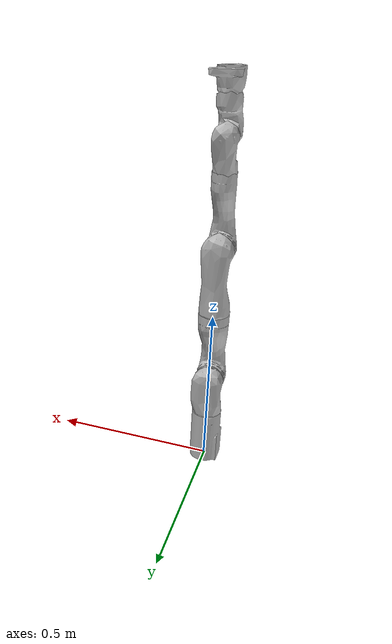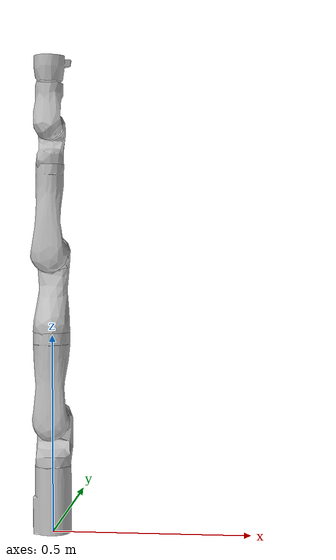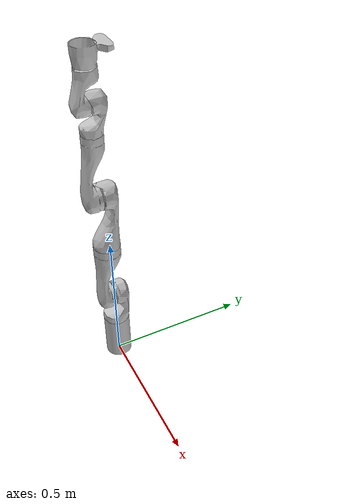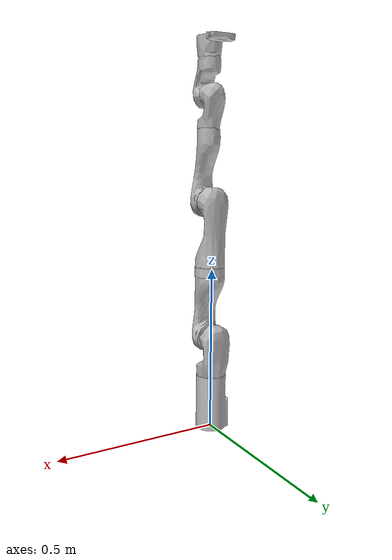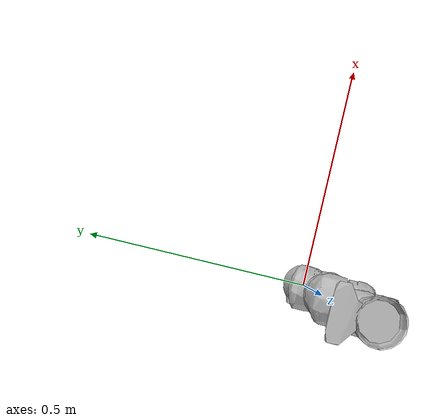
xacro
<?xml version="1.0"?>

<robot name="gen3" xmlns:xacro="http://ros.org/wiki/xacro">

    <!-- Arguments -->
    <xacro:arg name="arm" default="gen3" />
    <xacro:arg name="dof" default="7" />
    <xacro:arg name="vision" default="true" />
    <xacro:arg name="gripper" default="" />
    <xacro:arg name="sim" default="false" />
    <xacro:arg name="prefix" default="" />
    <xacro:arg name="board_id" default="task_board"/>

    <!-- Load the robot -->
    <xacro:include filename="$(find kortex_description)/robots/kortex_robot.xacro" />
    <xacro:load_robot arm="$(arg arm)" gripper="$(arg gripper)" dof="$(arg dof)" vision="$(arg vision)" sim="$(arg sim)" prefix="$(arg prefix)" />

    <!-- Load the task board -->

    <!-- Connect the task board to the world -->

</robot>

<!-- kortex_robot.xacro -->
<robot xmlns:xacro="http://ros.org/wiki/xacro">

    <xacro:macro name="load_robot" params="arm gripper dof vision sim prefix">

        <!-- Files to include -->
        <xacro:include filename="$(find kortex_description)/arms/${arm}/${dof}dof/urdf/${arm}_macro.xacro" />
        <xacro:unless value="${not gripper}">
            <xacro:include filename="$(find kortex_description)/grippers/${gripper}/urdf/${gripper}_macro.xacro" />
        </xacro:unless>

        <xacro:if value="${sim}">
            <!-- Arm transmission elements-->
            <xacro:include filename="$(find kortex_description)/arms/${arm}/${dof}dof/urdf/${arm}_transmission_macro.xacro" />
            <!-- Gripper transmission elements if there is a gripper-->
            <xacro:unless value="${not gripper}">
                <xacro:include filename="$(find kortex_description)/grippers/${gripper}/urdf/${gripper}_transmission_macro.xacro" />
            </xacro:unless>
        </xacro:if>

        <!-- Run the macros -->

        <!-- For gazebo-->
        <xacro:if value="${sim}">
            <link name="world" />
            <joint name="world_to_root" type="fixed">
                <child link="${prefix}base_link" />
                <parent link="world" />
                <origin xyz="0 0 0" rpy="0 0 0" />
            </joint>
        </xacro:if>

        <!-- Load the arm -->
        <xacro:load_arm parent="" dof="${dof}" vision="${vision}" prefix="${prefix}">
            <origin xyz="0 0 0" rpy="0 0 0"/>
        </xacro:load_arm>

        <!-- Load the gripper -->
        <xacro:unless value="${not gripper}">
            <!-- last_arm_link is defined in "$(find kortex_description)/arms/${arm}/urdf/${arm}_macro.xacro" -->
            <xacro:load_gripper parent="${prefix}${last_arm_link}"  prefix="${prefix}"/>
        </xacro:unless>
        <!-- If no gripper, define tool frame here -->
        <xacro:if value="${not gripper}">
            <link name="${prefix}tool_frame"/>
            <joint name="${prefix}tool_frame_joint" type="fixed">
                <origin xyz="0 0 0" rpy="0 0 0" />
                <parent link="${prefix}${last_arm_link}" />
                <child link="${prefix}tool_frame" />
                <axis xyz="0 0 0" />
            </joint>
        </xacro:if>

        <!-- Load the Gazebo transmissions and gazebo_ros_control plugin -->
        <xacro:if value="${sim}">

            <xacro:load_gazebo_arm_transmissions prefix="${prefix}"/>

            <xacro:unless value="${not gripper}">
                <xacro:load_gazebo_gripper_transmissions prefix="${prefix}"/>
            </xacro:unless>

            <gazebo>
                <plugin name="gazebo_ros_control" filename="libgazebo_ros_control.so">
                    <legacyModeNS>true</legacyModeNS>
                </plugin>
            </gazebo>

        </xacro:if>
    </xacro:macro>
</robot>

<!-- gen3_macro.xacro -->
<robot name="gen3_arm" xmlns:xacro="http://ros.org/wiki/xacro">

  <!-- Propagate last link name information because it is the gripper's parent link -->
  <xacro:property name="last_arm_link" value="end_effector_link"/>

  <!-- Include the task_board xacro file -->

  <xacro:macro name="load_arm" params="parent:='' dof vision prefix *origin">
      <link name="${prefix}base_link">
        <inertial>
          <origin xyz="-0.000648 -0.000166 0.084487" rpy="0 0 0" />
          <mass value="1.697" />
          <inertia ixx="0.004622" ixy="9E-06" ixz="6E-05" iyy="0.004495" iyz="9E-06" izz="0.002079" />
        </inertial>
        <visual>
          <origin xyz="0 0 0" rpy="0 0 0" />
          <geometry>
            <mesh filename="package://kortex_description/arms/gen3/${dof}dof/meshes/base_link.STL" />
          </geometry>
          <material name="">
            <color rgba="0.75294 0.75294 0.75294 1" />
          </material>
        </visual>
        <collision>
          <origin xyz="0 0 0" rpy="0 0 0" />
          <geometry>
            <mesh filename="package://kortex_description/arms/gen3/${dof}dof/meshes/base_link.STL" />
          </geometry>
        </collision>
    </link>
    <link name="${prefix}shoulder_link">
      <inertial>
        <origin xyz="-2.3E-05 -0.010364 -0.07336" rpy="0 0 0" />
        <mass value="1.3773" />
        <inertia ixx="0.00457" ixy="1E-06" ixz="2E-06" iyy="0.004831" iyz="0.000448" izz="0.001409" />
      </inertial>
      <visual>
        <origin xyz="0 0 0" rpy="0 0 0" />
        <geometry>
          <mesh filename="package://kortex_description/arms/gen3/${dof}dof/meshes/shoulder_link.STL" />
        </geometry>
        <material name="">
          <color rgba="0.75294 0.75294 0.75294 1" />
        </material>
      </visual>
      <collision>
        <origin xyz="0 0 0" rpy="0 0 0" />
        <geometry>
          <mesh filename="package://kortex_description/arms/gen3/${dof}dof/meshes/shoulder_link.STL" />
        </geometry>
      </collision>
    </link>
    <joint
      name="${prefix}joint_1"
      type="continuous">
      <origin xyz="0 0 0.15643" rpy="3.1416 2.7629E-18 -4.9305E-36" />
      <parent
        link="${prefix}base_link" />
      <child
        link="${prefix}shoulder_link" />
      <axis
        xyz="0 0 1" />
      <limit
        effort="39"
        velocity="1.3963" />
    </joint>
    <link name="${prefix}half_arm_1_link">
      <inertial>
        <origin xyz="-4.4E-05 -0.09958 -0.013278" rpy="0 0 0" />
        <mass value="1.1636" />
        <inertia ixx="0.011088" ixy="5E-06" ixz="0" iyy="0.001072" iyz="-0.000691" izz="0.011255" />
      </inertial>
      <visual>
        <origin xyz="0 0 0" rpy="0 0 0" />
        <geometry>
          <mesh filename="package://kortex_description/arms/gen3/${dof}dof/meshes/half_arm_1_link.STL" />
        </geometry>
        <material name="">
          <color rgba="0.75294 0.75294 0.75294 1" />
        </material>
      </visual>
      <collision>
        <origin xyz="0 0 0" rpy="0 0 0" />
        <geometry>
          <mesh filename="package://kortex_description/arms/gen3/${dof}dof/meshes/half_arm_1_link.STL" />
        </geometry>
      </collision>
    </link>
    <joint
      name="${prefix}joint_2"
      type="revolute">
      <origin xyz="0 0.005375 -0.12838" rpy="1.5708 2.1343E-17 -1.1102E-16" />
      <parent
        link="${prefix}shoulder_link" />
      <child
        link="${prefix}half_arm_1_link" />
      <axis
        xyz="0 0 1" />
      <limit lower="-2.24" upper="2.24" effort="39" velocity="1.3963" />
    </joint>
    <link name="${prefix}half_arm_2_link">
      <inertial>
        <origin xyz="-4.4E-05 -0.006641 -0.117892" rpy="0 0 0" />
        <mass value="1.1636" />
        <inertia ixx="0.010932" ixy="0" ixz="-7E-06" iyy="0.011127" iyz="0.000606" izz="0.001043" />
      </inertial>
      <visual>
        <origin xyz="0 0 0" rpy="0 0 0" />
        <geometry>
          <mesh filename="package://kortex_description/arms/gen3/${dof}dof/meshes/half_arm_2_link.STL" />
        </geometry>
        <material name="">
          <color rgba="0.75294 0.75294 0.75294 1" />
        </material>
      </visual>
      <collision>
        <origin xyz="0 0 0" rpy="0 0 0" />
        <geometry>
          <mesh filename="package://kortex_description/arms/gen3/${dof}dof/meshes/half_arm_2_link.STL" />
        </geometry>
      </collision>
    </link>
    <joint
      name="${prefix}joint_3"
      type="continuous">
      <origin xyz="0 -0.21038 -0.006375" rpy="-1.5708 1.2326E-32 -2.9122E-16" />
      <parent
        link="${prefix}half_arm_1_link" />
      <child
        link="${prefix}half_arm_2_link" />
      <axis
        xyz="0 0 1" />
      <limit
        effort="39"
        velocity="1.3963" />
    </joint>
    <link name="${prefix}forearm_link">
      <inertial>
        <origin xyz="-1.8E-05 -0.075478 -0.015006" rpy="0 0 0" />
        <mass value="0.9302" />
        <inertia ixx="0.008147" ixy="-1E-06" ixz="0" iyy="0.000631" iyz="-0.0005" izz="0.008316" />
      </inertial>
      <visual>
        <origin xyz="0 0 0" rpy="0 0 0" />
        <geometry>
          <mesh filename="package://kortex_description/arms/gen3/${dof}dof/meshes/forearm_link.STL" />
        </geometry>
        <material name="">
          <color rgba="0.75294 0.75294 0.75294 1" />
        </material>
      </visual>
      <collision>
        <origin xyz="0 0 0" rpy="0 0 0" />
        <geometry>
          <mesh filename="package://kortex_description/arms/gen3/${dof}dof/meshes/forearm_link.STL" />
        </geometry>
      </collision>
    </link>
    <joint
      name="${prefix}joint_4"
      type="revolute">
      <origin xyz="0 0.006375 -0.21038" rpy="1.5708 -6.6954E-17 -1.6653E-16" />
      <parent
        link="${prefix}half_arm_2_link" />
      <child
        link="${prefix}forearm_link" />
      <axis
        xyz="0 0 1" />
      <limit lower="-2.57" upper="2.57" effort="39" velocity="1.3963" />
    </joint>
    <link name="${prefix}spherical_wrist_1_link">
      <inertial>
        <origin xyz="1E-06 -0.009432 -0.063883" rpy="0 0 0" />
        <mass value="0.6781" />
        <inertia ixx="0.001596" ixy="0" ixz="0" iyy="0.001607" iyz="0.000256" izz="0.000399" />
      </inertial>
      <visual>
        <origin xyz="0 0 0" rpy="0 0 0" />
        <geometry>
          <mesh filename="package://kortex_description/arms/gen3/${dof}dof/meshes/spherical_wrist_1_link.STL" />
        </geometry>
        <material name="">
          <color rgba="0.75294 0.75294 0.75294 1" />
        </material>
      </visual>
      <collision>
        <origin xyz="0 0 0" rpy="0 0 0" />
        <geometry>
          <mesh filename="package://kortex_description/arms/gen3/${dof}dof/meshes/spherical_wrist_1_link.STL" />
        </geometry>
      </collision>
    </link>
    <joint
      name="${prefix}joint_5"
      type="continuous">
      <origin xyz="0 -0.20843 -0.006375" rpy="-1.5708 2.2204E-16 -6.373E-17" />
      <parent
        link="${prefix}forearm_link" />
      <child
        link="${prefix}spherical_wrist_1_link" />
      <axis
        xyz="0 0 1" />
      <limit
        effort="9"
        velocity="1.2218" />
    </joint>
    <link name="${prefix}spherical_wrist_2_link">
      <inertial>
        <origin xyz="1E-06 -0.045483 -0.00965" rpy="0 0 0" />
        <mass value="0.6781" />
        <inertia ixx="0.001641" ixy="0" ixz="0" iyy="0.00041" iyz="-0.000278" izz="0.001641" />
      </inertial>
      <visual>
        <origin xyz="0 0 0" rpy="0 0 0" />
        <geometry>
          <mesh filename="package://kortex_description/arms/gen3/${dof}dof/meshes/spherical_wrist_2_link.STL" />
        </geometry>
        <material name="">
          <color rgba="0.75294 0.75294 0.75294 1" />
        </material>
      </visual>
      <collision>
        <origin xyz="0 0 0" rpy="0 0 0" />
        <geometry>
          <mesh filename="package://kortex_description/arms/gen3/${dof}dof/meshes/spherical_wrist_2_link.STL" />
        </geometry>
      </collision>
    </link>
    <joint
      name="${prefix}joint_6"
      type="revolute">
      <origin xyz="0 0.00017505 -0.10593" rpy="1.5708 9.2076E-28 -8.2157E-15" />
      <parent
        link="${prefix}spherical_wrist_1_link" />
      <child
        link="${prefix}spherical_wrist_2_link" />
      <axis
        xyz="0 0 1" />
      <limit lower="-2.09" upper="2.09" effort="9" velocity="1.2218" />
    </joint>
    <xacro:if value="${vision}">
    <link name="${prefix}bracelet_link">
      <inertial>
        <origin xyz="0.000281 0.011402 -0.029798" rpy="0 0 0" />
        <mass value="0.5" />
        <inertia ixx="0.000587" ixy="3E-06" ixz="3E-06" iyy="0.000369" iyz="-0.000118" izz="0.000609" />
      </inertial>
      <visual>
        <origin xyz="0 0 0" rpy="0 0 0" />
        <geometry>
          <mesh filename="package://kortex_description/arms/gen3/${dof}dof/meshes/bracelet_with_vision_link.STL" />
        </geometry>
        <material name="">
          <color rgba="0.75294 0.75294 0.75294 1" />
        </material>
      </visual>
      <collision>
        <origin xyz="0 0 0" rpy="0 0 0" />
        <geometry>
          <mesh filename="package://kortex_description/arms/gen3/${dof}dof/meshes/bracelet_with_vision_link.STL" />
        </geometry>
      </collision>
    </link>
    </xacro:if>
    <xacro:unless value="${vision}">
    <link name="${prefix}bracelet_link">
      <inertial>
        <origin xyz="-9.3E-05 0.000132 -0.022905" rpy="0 0 0" />
        <mass value="0.364" />
        <inertia ixx="0.000214" ixy="0" ixz="1E-06" iyy="0.000223" iyz="-2E-06" izz="0.00024" />
      </inertial>
      <visual>
        <origin xyz="0 0 0" rpy="0 0 0" />
        <geometry>
          <mesh filename="package://kortex_description/arms/gen3/${dof}dof/meshes/bracelet_no_vision_link.STL" />
        </geometry>
        <material name="">
          <color rgba="0.75294 0.75294 0.75294 1" />
        </material>
      </visual>
      <collision>
        <origin xyz="0 0 0" rpy="0 0 0" />
        <geometry>
          <mesh filename="package://kortex_description/arms/gen3/${dof}dof/meshes/bracelet_no_vision_link.STL" />
        </geometry>
      </collision>
    </link>
    </xacro:unless>
    <joint
      name="${prefix}joint_7"
      type="continuous">
      <origin xyz="0 -0.10593 -0.00017505" rpy="-1.5708 -5.5511E-17 9.6396E-17" />
      <parent
        link="${prefix}spherical_wrist_2_link" />
      <child
        link="${prefix}bracelet_link" />
      <axis
        xyz="0 0 1" />
      <limit
        effort="9"
        velocity="1.2218" />
    </joint>
    <link name="${prefix}end_effector_link" />
    <joint
      name="${prefix}end_effector"
      type="fixed">
      <origin xyz="0 0 -0.0615250000000001" rpy="3.14159265358979 1.09937075168372E-32 0" />
      <parent
        link="${prefix}bracelet_link" />
      <child
        link="${prefix}end_effector_link" />
      <axis
        xyz="0 0 0" />
    </joint>
    <xacro:if value="${vision}">
      <link name="${prefix}camera_link" />
      <joint name="${prefix}camera_module" type="fixed">
        <origin xyz="0 0.05639 -0.00305" rpy="-1.57 -1.57 0" />
        <parent link="${prefix}end_effector_link" />
        <child  link="${prefix}camera_link" />
      </joint>
      <link name="${prefix}camera_depth_frame" />
      <joint name="${prefix}depth_module" type="fixed">
        <origin xyz="0.0275 0.066 -0.00305" rpy="-1.57 -1.57 0" />
        <parent link="${prefix}end_effector_link" />
        <child  link="${prefix}camera_depth_frame" />
      </joint>
      <link name="${prefix}camera_color_frame" />
      <joint name="${prefix}color_module" type="fixed">
        <origin xyz="0 0.05639 -0.00305" rpy="-1.57 -1.57 0" />
        <parent link="${prefix}end_effector_link" />
        <child  link="${prefix}camera_color_frame" />
      </joint>
    </xacro:if>

    <gazebo reference="${prefix}camera_link">
      <sensor type="camera" name="camera_sensor">
        <camera>
          <horizontal_fov>1.3962634</horizontal_fov>
          <image>
            <width>640</width>
            <height>480</height>
            <format>R8G8B8</format>
          </image>
          <clip>
            <near>0.1</near>
            <far>100</far>
          </clip>
        </camera>
        <plugin name="camera_controller" filename="libgazebo_ros_camera.so">
          <alwaysOn>true</alwaysOn>
          <updateRate>30</updateRate>
          <cameraName>camera</cameraName>
          <imageTopicName>image_raw</imageTopicName>
          <cameraInfoTopicName>camera_info</cameraInfoTopicName>
          <frameName>$(arg color_frame_id)</frameName>
        </plugin>
      </sensor>
    </gazebo>

    <!-- Add the task board -->

  </xacro:macro>
</robot>
